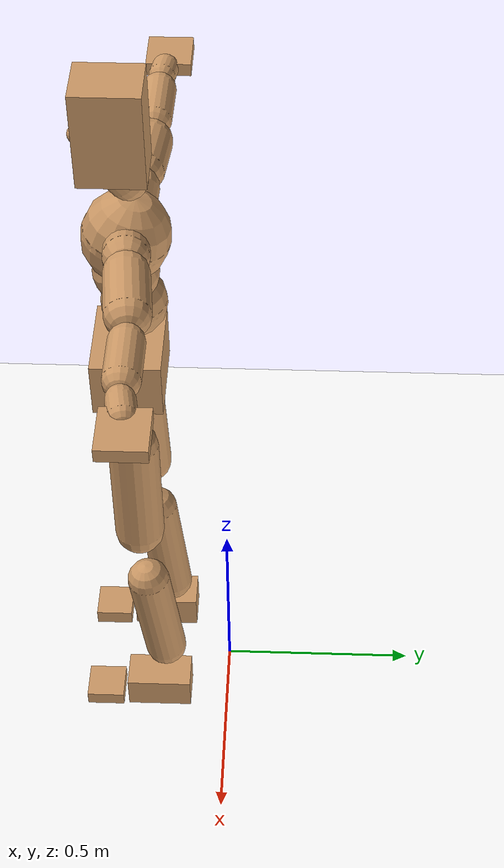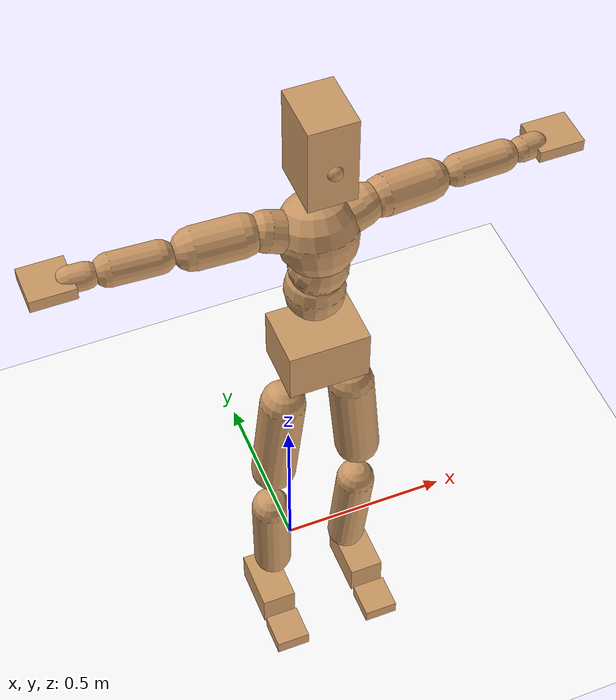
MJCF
<mujoco model="humanoid">
  <option integrator="implicitfast" />

  <visual>
    <global offwidth="1280" offheight="960" />
    <headlight active="1" ambient="0.34 0.34 0.34" diffuse="0.5 0.5 0.5" />
  </visual>

  <default>
    <joint damping="2" stiffness="2" armature="0.01" limited="true" solimplimit="0 .99 .01" />
    <geom condim="1" friction="0.7 0.005 0.0001" solimp=".99 .99 .003" solref="0.015 1" margin="0.001" rgba="0.8 0.6 .4 1" />
    <default class="smplcontact">
      <geom condim="3" friction="1. 0.005 0.0001" solref="0.015 1" solimp="0.98 0.98 0.001" priority="1" />
    </default>
    <default class="stiff_medium">
      <joint stiffness="10" />
    </default>
    <default class="stiff_medium_higher">
      <joint stiffness="50" />
    </default>
    <default class="stiff_high">
      <joint stiffness="100" />
    </default>
  </default>

  <asset>
    <texture type="skybox" builtin="gradient" rgb1="0.99 0.99 0.99" rgb2="0.608 0.828 0.892" width="100" />
    <texture builtin="flat" height="1278" mark="cross" markrgb="1 1 1" name="texgeom" random="0.01" rgb1="0.8 0.6 0.4" rgb2="0.8 0.6 0.4" type="cube" width="127" />
    <texture name="texplane" type="2d" builtin="checker" markrgb="1 1 1" rgb1="0.756 0.772 0.76" rgb2="0.6 0.6 0.6" width="100" height="100" />
    <material name="MatPlane" reflectance="0.5" texture="texplane" texrepeat="1 1" texuniform="true" />
    <material name="geom" texture="texgeom" texuniform="true" />
  </asset>

  <worldbody>
    <light name="tracking_light" pos="0 0 7" dir="0 0 -1" directional="true" cutoff="100" exponent="1" diffuse="1 1 1" specular="0.1 0.1 0.1" mode="trackcom" />
    <camera name="back" pos="0 3 2.4" xyaxes="-1 0 0 0 -1 2" mode="trackcom" />
    <camera name="side" pos="-3 0 2.4" xyaxes="0 -1 0 1 0 2" mode="trackcom" />
    <camera name="front_side" pos="-2.8 -2.8 0.8" xyaxes="0.5 -0.5 0 0.1 0.1 1" mode="trackcom" />
    <geom condim="3" name="floor" pos="0 0 0" rgba="1 1 1 1" size="100 100 .2" type="plane" material="MatPlane" />
    <body name="Pelvis" pos="-0.0018 -0.2233 1.16548" euler="90 0 0">
      <site name="Pelvis" size="0.01" />
      <freejoint name="Pelvis" />
      <geom type="box" pos="-0.0000 -0.0121 -0.0055" size="0.1069 0.0722 0.083" quat="1.0000 0.0000 0.0000 0.0000" density="3165.830099" name="Pelvis" />
      <body name="L_Hip" pos="0.086875 -0.11425 -0.0085">
        <joint name="L_Hip_x" type="hinge" pos="0 0 0" axis="1 0 0" stiffness="14.589841836734694" range="-160.0 22.92" class="stiff_medium" damping="24.10689143795971" armature="0.017703099984976"/>
        <joint name="L_Hip_y" type="hinge" pos="0 0 0" axis="0 1 0" stiffness="14.527612551020406" range="-70.0 70.0" class="stiff_medium" damping="14.262213477061747" armature="0.014001662871370724"/>
        <joint name="L_Hip_z" type="hinge" pos="0 0 0" axis="0 0 1" stiffness="14.532940204081633" range="-28.65 90.0" class="stiff_medium" damping="16.042326803653772" armature="0.01770847782081624"/>
        <geom type="capsule" density="2040.816327" fromto="0.008625 -0.09375 -0.001125 0.03425 -0.37525 -0.0045" size="0.0615" name="L_Hip" />
        <body name="L_Knee" pos="0.042875 -0.469 -0.005625">
          <joint name="L_Knee_x" type="hinge" pos="0 0 0" axis="1 0 0" range="-5.16 171.89" damping="12.42786647328908" armature="0.01695568739341873" stiffness="2.8466087346938775"/>
          <joint name="L_Knee_y" type="hinge" pos="0 0 0" axis="0 1 0" range="-4.58 6.88" damping="11.131948599716754" armature="0.013404538190087148" stiffness="2.888953489795919"/>
          <joint name="L_Knee_z" type="hinge" pos="0 0 0" axis="0 0 1" range="-6.88 4.58" damping="12.396032357314196" armature="0.01698035549968794" stiffness="2.8279299387755104"/>
          <geom type="capsule" density="1234.567901" fromto="-0.003375 -0.0995 -0.010875 -0.013625 -0.398 -0.04375" size="0.0541" name="L_Knee" />
          <body name="L_Ankle" pos="-0.017 -0.4975 -0.054625">
            <joint name="L_Ankle_x" type="hinge" pos="0 0 0" axis="1 0 0" range="-45.84 45.84" class="stiff_medium" damping="7.851672460897992" armature="0.013699724540716432" stiffness="12.5"/>
            <joint name="L_Ankle_y" type="hinge" pos="0 0 0" axis="0 1 0" range="-74.48 22.92" class="stiff_medium" damping="3.9060654718054306" armature="0.013562086640027183" stiffness="12.5"/>
            <joint name="L_Ankle_z" type="hinge" pos="0 0 0" axis="0 0 1" range="-4.58 4.58" class="stiff_medium" damping="7.548153538649302" armature="0.012661027076227552" stiffness="12.5"/>
            <geom type="box" pos="0.029125 -0.029875 0.03025" size="0.0483 0.0464 0.085" quat="1.0000 0.0000 0.0000 0.0000" density="449.071558" name="L_Ankle" class="smplcontact" />
            <body name="L_Toe" pos="0.033 -0.06975 0.149125">
              <joint name="L_Toe_x" type="hinge" pos="0 0 0" axis="1 0 0" range="-91.67 22.92" armature="0.0121385570017811" damping="2.463590570872228" stiffness="2.5"/>
              <joint name="L_Toe_y" type="hinge" pos="0 0 0" axis="0 1 0" range="-4.58 4.58" armature="0.011506786054687992" damping="2.398623152423906" stiffness="2.5"/>
              <joint name="L_Toe_z" type="hinge" pos="0 0 0" axis="0 0 1" range="-4.58 4.58" armature="0.01022937920457889" damping="2.261567952171556" stiffness="2.5"/>
              <geom type="box" pos="-0.00375 0.006875 0.031" size="0.0478 0.02 0.0496" quat="1.0000 0.0000 0.0000 0.0000" density="423.206892" name="L_Toe" class="smplcontact" />
            </body>
          </body>
        </body>
      </body>
      <body name="R_Hip" pos="-0.084625 -0.113125 -0.005375">
        <joint name="R_Hip_x" type="hinge" pos="0 0 0" axis="1 0 0" stiffness="14.589841836734694" range="-160.0 22.92" class="stiff_medium" damping="24.10689143795971" armature="0.017703099984976"/>
        <joint name="R_Hip_y" type="hinge" pos="0 0 0" axis="0 1 0" stiffness="14.527612551020406" range="-70.0 70.0" class="stiff_medium" damping="14.262213477061747" armature="0.014001662871370724"/>
        <joint name="R_Hip_z" type="hinge" pos="0 0 0" axis="0 0 1" stiffness="14.532940204081633" range="-90.0 28.65" class="stiff_medium" damping="16.042326803653772" armature="0.01770847782081624"/>
        <geom type="capsule" density="2040.816327" fromto="-0.009625 -0.095625 -0.00225 -0.03825 -0.382625 -0.008875" size="0.0606" name="R_Hip" />
        <body name="R_Knee" pos="-0.047875 -0.47825 -0.011125">
          <joint name="R_Knee_x" type="hinge" pos="0 0 0" axis="1 0 0" range="-5.16 171.89" damping="12.42786647328908" armature="0.01695568739341873" stiffness="2.8466087346938775"/>
          <joint name="R_Knee_y" type="hinge" pos="0 0 0" axis="0 1 0" range="-6.88 4.58" damping="11.131948599716754" armature="0.013404538190087148" stiffness="2.888953489795919"/>
          <joint name="R_Knee_z" type="hinge" pos="0 0 0" axis="0 0 1" range="-4.58 6.88" damping="12.396032357314196" armature="0.01698035549968794" stiffness="2.8279299387755104"/>
          <geom type="capsule" density="1234.567901" fromto="0.004 -0.099625 -0.010625 0.01575 -0.398375 -0.04225" size="0.0541" name="R_Knee" />
          <body name="R_Ankle" pos="0.01975 -0.498 -0.052875">
            <joint name="R_Ankle_x" type="hinge" pos="0 0 0" axis="1 0 0" range="-45.84 45.84" class="stiff_medium" damping="7.851672460897992" armature="0.013699724540716432" stiffness="12.5"/>
            <joint name="R_Ankle_y" type="hinge" pos="0 0 0" axis="0 1 0" range="-22.92 74.48" class="stiff_medium" damping="3.9060654718054306" armature="0.013562086640027183" stiffness="12.5"/>
            <joint name="R_Ankle_z" type="hinge" pos="0 0 0" axis="0 0 1" range="-4.58 4.58" class="stiff_medium" damping="7.548153538649302" armature="0.012661027076227552" stiffness="12.5"/>
            <geom type="box" pos="-0.0265 -0.02175 0.032" size="0.0483 0.0478 0.0865" quat="1.0000 0.0000 0.0000 0.0000" density="434.700981" name="R_Ankle" class="smplcontact" />
            <body name="R_Toe" pos="-0.03175 -0.060125 0.154125">
              <joint name="R_Toe_x" type="hinge" pos="0 0 0" axis="1 0 0" range="-91.67 22.92" armature="0.0121385570017811" damping="2.463590570872228" stiffness="2.5"/>
              <joint name="R_Toe_y" type="hinge" pos="0 0 0" axis="0 1 0" range="-4.58 4.58" armature="0.011506786054687992" damping="2.398623152423906" stiffness="2.5"/>
              <joint name="R_Toe_z" type="hinge" pos="0 0 0" axis="0 0 1" range="-4.58 4.58" armature="0.01022937920457889" damping="2.261567952171556" stiffness="2.5"/>
              <geom type="box" pos="0.00525 0.005625 0.028375" size="0.0479 0.0216 0.0493" quat="1.0000 0.0000 0.0000 0.0000" density="407.384095" name="R_Toe" class="smplcontact" />
            </body>
          </body>
        </body>
      </body>
      <body name="Torso" pos="-0.0025 0.109 -0.0267">
        <joint name="Torso_x" type="hinge" pos="0 0 0" axis="1 0 0" range="-25.78 57.3" class="stiff_medium" damping="13.810652204593472" armature="0.009092501018959226" stiffness="9.323146326530612"/>
        <joint name="Torso_y" type="hinge" pos="0 0 0" axis="0 1 0" range="-57.3 57.3" class="stiff_high" damping="14.331171543099826" armature="0.005453647751768046" stiffness="94.1491306122449"/>
        <joint name="Torso_z" type="hinge" pos="0 0 0" axis="0 0 1" range="-34.38 34.38" class="stiff_high" damping="17.298336416757877" armature="0.00784644435837221" stiffness="95.34014042553191"/>
        <geom type="capsule" density="2040.816327" fromto="0.0025 0.0608 0.0005 0.003 0.0743 0.0006" size="0.0769" name="Torso" />
        <body name="Spine" pos="0.0055 0.1352 0.0011">
          <joint name="Spine_x" type="hinge" pos="0 0 0" axis="1 0 0" stiffness="9.198122653061224" range="-25.78 57.3" class="stiff_medium" damping="13.625447932409386" armature="0.008970566343267747"/>
          <joint name="Spine_y" type="hinge" pos="0 0 0" axis="0 1 0" stiffness="9.181372040816328" range="-57.3 57.3" class="stiff_high" damping="5.644321396937274" armature="0.005421705337566874"/>
          <joint name="Spine_z" type="hinge" pos="0 0 0" axis="0 0 1" stiffness="18.1392375" range="-34.38 34.38" class="stiff_high" damping="9.559994320421609" armature="0.006997835754189824"/>
          <geom type="capsule" density="2040.816327" fromto="0.0007 0.0238 0.0114 0.0008 0.0291 0.014" size="0.0755" name="Spine" />
          <body name="Chest" pos="0.0015 0.0529 0.0254">
            <joint name="Chest_x" type="hinge" pos="0 0 0" axis="1 0 0" stiffness="8.90027425531915" range="-25.78 57.3" class="stiff_medium" damping="13.356132991200647" armature="0.008907904701027876"/>
            <joint name="Chest_y" type="hinge" pos="0 0 0" axis="0 1 0" stiffness="8.011889047619047" range="-57.3 57.3" class="stiff_high" damping="5.2662250647625015" armature="0.005408588385784326"/>
            <joint name="Chest_z" type="hinge" pos="0 0 0" axis="0 0 1" stiffness="18.1318547826087" range="-34.38 34.38" class="stiff_high" damping="9.302458057933908" armature="0.006628583212401053"/>
            <geom type="capsule" density="2040.816327" fromto="-0.0009 0.0682 -0.0173 -0.001 0.0833 -0.0212" size="0.1002" name="Chest" />
            <body name="Neck" pos="-0.0028 0.2139 -0.0429">
              <joint name="Neck_x" type="hinge" pos="0 0 0" axis="1 0 0" range="-28.65 57.3" class="stiff_medium_higher" damping="9.999999999999996" armature="0.009999999999999993" stiffness="50.0"/>
              <joint name="Neck_y" type="hinge" pos="0 0 0" axis="0 1 0" range="-40.11 40.11" class="stiff_medium_higher" damping="10.0" armature="0.01" stiffness="50.0"/>
              <joint name="Neck_z" type="hinge" pos="0 0 0" axis="0 0 1" range="-40.11 40.11" class="stiff_medium_higher" damping="10.0" armature="0.010000000000000002" stiffness="50.0"/>
              <geom type="capsule" density="1000" fromto="0.001 0.013 0.0103 0.0041 0.052 0.0411" size="0.0436" name="Neck" />
              <body name="Head" pos="0.0052 0.065 0.0513">
                <joint name="Head_x" type="hinge" pos="0 0 0" axis="1 0 0" range="-28.65 57.3" class="stiff_medium_higher" damping="2.0000000000000004" armature="0.010000000000000005" stiffness="50.0"/>
                <joint name="Head_y" type="hinge" pos="0 0 0" axis="0 1 0" range="-40.11 40.11" class="stiff_medium_higher" damping="2.0" armature="0.01" stiffness="50.0"/>
                <joint name="Head_z" type="hinge" pos="0 0 0" axis="0 0 1" range="-40.11 40.11" class="stiff_medium_higher" damping="2.0000000000000053" armature="0.010000000000000054" stiffness="50.0"/>
                <geom type="box" pos="-0.0042 0.0876 -0.0116" size="0.0606 0.1154 0.076" quat="1.0000 0.0000 0.0000 0.0000" density="1018.069894" name="Head" />
                <geom type="capsule" name="nose" size="0.02 0.01" pos="0 0.07 0.05" quat="1 0 0 0" mass="0" contype="0" conaffinity="0" />
              </body>
            </body>
            <body name="L_Thorax" pos="0.06107 0.0943175 -0.0264275">
              <joint name="L_Thorax_x" type="hinge" pos="0 0 0" axis="1 0 0" range="-10.89 4.58" class="stiff_medium_higher" damping="13.43087791250656" armature="0.0067438731053502225" stiffness="33.43562346938776"/>
              <joint name="L_Thorax_y" type="hinge" pos="0 0 0" axis="0 1 0" range="-28.65 17.19" class="stiff_medium_higher" damping="11.84395870975866" armature="0.0052794554835980945" stiffness="33.21350051020408"/>
              <joint name="L_Thorax_z" type="hinge" pos="0 0 0" axis="0 0 1" range="-31.51 40.11" class="stiff_medium_higher" damping="11.842904847336026" armature="0.005278125365951001" stiffness="33.215958673469395"/>
              <geom type="capsule" density="1000" fromto="0.014105 0.0047275 -0.001395 0.05642 0.01891 -0.0055025" size="0.0521" name="L_Thorax" />
              <body name="L_Shoulder" pos="0.070525 0.0236375 -0.0068975">
                <joint name="L_Shoulder_x" type="hinge" pos="0 0 0" axis="1 0 0" range="-97.4 97.4" class="stiff_medium" damping="4.200573869623456" armature="0.007293874713182311" stiffness="6.719801632653062"/>
                <joint name="L_Shoulder_y" type="hinge" pos="0 0 0" axis="0 1 0" range="-108.86 80.21" class="stiff_medium" damping="3.571992469559294" armature="0.0053222464306009526" stiffness="6.659223469387755"/>
                <joint name="L_Shoulder_z" type="hinge" pos="0 0 0" axis="0 0 1" range="-97.4 85.94" class="stiff_medium" damping="3.572341469527375" armature="0.005320431449506389" stiffness="6.662796938775511"/>
                <geom type="capsule" density="1000" fromto="0.0402225 -0.002015 -0.0042625 0.160968 -0.007905 -0.01705" size="0.0517" name="L_Shoulder" />
                <body name="L_Elbow" pos="0.20119 -0.00992 -0.0213125">
                  <joint name="L_Elbow_x" type="hinge" pos="0 0 0" axis="1 0 0" range="-17.19 4.58" damping="3.7512094390015127" armature="0.008221713445805183" stiffness="1.3692106734693876"/>
                  <joint name="L_Elbow_y" type="hinge" pos="0 0 0" axis="0 1 0" range="-180.0 17.19" damping="3.0766314110203528" armature="0.005532912421377135" stiffness="1.368633387755102"/>
                  <joint name="L_Elbow_z" type="hinge" pos="0 0 0" axis="0 0 1" range="-100.84 4.58" damping="3.075083451218572" armature="0.005523383254833459" stiffness="1.3696153673469391"/>
                  <geom type="capsule" density="1000" fromto="0.038595 0.001395 -0.000155 0.154535 0.00558 -0.0006975" size="0.0405" name="L_Elbow" />
                  <body name="L_Wrist" pos="0.19313 0.006975 -0.00093">
                    <joint name="L_Wrist_x" type="hinge" pos="0 0 0" axis="1 0 0" range="-180.0 22.92" armature="0.008602907880090408" damping="1.5994571311849286" stiffness="1.486859530612245"/>
                    <joint name="L_Wrist_y" type="hinge" pos="0 0 0" axis="0 1 0" range="-17.19 17.19" armature="0.006335437662014466" damping="1.3682982903238978" stiffness="1.4775934285714285"/>
                    <joint name="L_Wrist_z" type="hinge" pos="0 0 0" axis="0 0 1" range="-22.92 22.92" armature="0.006206199430184796" damping="1.3559819581986192" stiffness="1.4813309591836734"/>
                    <geom type="capsule" density="1000" fromto="0.01302 -0.00124 -0.002325 0.05208 -0.0050375 -0.0093" size="0.0318" name="L_Wrist" class="smplcontact" />
                    <body name="L_Hand" pos="0.0651 -0.006355 -0.0115475">
                      <joint name="L_Hand_x" type="hinge" pos="0 0 0" axis="1 0 0" range="-17.19 17.19" armature="0.009826007646420762" damping="1.7452972154880773" stiffness="1.55"/>
                      <joint name="L_Hand_y" type="hinge" pos="0 0 0" axis="0 1 0" range="-51.57 51.57" armature="0.007895802531703938" damping="1.564512315332871" stiffness="1.55"/>
                      <joint name="L_Hand_z" type="hinge" pos="0 0 0" axis="0 0 1" range="-91.67 91.67" armature="0.00738127998582637" damping="1.5126786822078822" stiffness="1.55"/>
                      <geom type="box" pos="0.0382075 0.000775 -0.004495" size="0.0585 0.0158 0.0538" quat="1.0000 0.0000 0.0000 0.0000" density="400.552564" name="L_Hand" class="smplcontact" />
                    </body>
                  </body>
                </body>
              </body>
            </body>
            <body name="R_Thorax" pos="-0.063395 0.09207 -0.029915">
              <joint name="R_Thorax_x" type="hinge" pos="0 0 0" axis="1 0 0" range="-10.89 4.58" class="stiff_medium_higher" damping="13.43087791250656" armature="0.0067438731053502225" stiffness="33.43562346938776"/>
              <joint name="R_Thorax_y" type="hinge" pos="0 0 0" axis="0 1 0" range="-17.19 28.65" class="stiff_medium_higher" damping="11.84395870975866" armature="0.0052794554835980945" stiffness="33.21350051020408"/>
              <joint name="R_Thorax_z" type="hinge" pos="0 0 0" axis="0 0 1" range="-40.11 31.51" class="stiff_medium_higher" damping="11.842904847336026" armature="0.005278125365951001" stiffness="33.215958673469395"/>
              <geom type="capsule" density="1000" fromto="-0.01488 0.0050375 -0.001395 -0.05952 0.02015 -0.0056575" size="0.0511" name="R_Thorax" />
              <body name="R_Shoulder" pos="-0.0744 0.025265 -0.0070525">
                <joint name="R_Shoulder_x" type="hinge" pos="0 0 0" axis="1 0 0" range="-97.4 97.4" class="stiff_medium" damping="4.200573869623456" armature="0.007293874713182311" stiffness="6.719801632653062"/>
                <joint name="R_Shoulder_y" type="hinge" pos="0 0 0" axis="0 1 0" range="-80.21 108.86" class="stiff_medium" damping="3.571992469559294" armature="0.0053222464306009526" stiffness="6.659223469387755"/>
                <joint name="R_Shoulder_z" type="hinge" pos="0 0 0" axis="0 0 1" range="-85.94 97.4" class="stiff_medium" damping="3.572341469527375" armature="0.005320431449506389" stiffness="6.662796938775511"/>
                <geom type="capsule" density="1000" fromto="-0.0392925 -0.0020925 -0.0033325 -0.157325 -0.0082925 -0.0132525" size="0.0531" name="R_Shoulder" />
                <body name="R_Elbow" pos="-0.196618 -0.0103075 -0.016585">
                  <joint name="R_Elbow_x" type="hinge" pos="0 0 0" axis="1 0 0" range="-17.19 4.58" damping="3.7512094390015127" armature="0.008221713445805183" stiffness="1.3692106734693876"/>
                  <joint name="R_Elbow_y" type="hinge" pos="0 0 0" axis="0 1 0" range="-17.19 180.0" damping="3.0766314110203528" armature="0.005532912421377135" stiffness="1.368633387755102"/>
                  <joint name="R_Elbow_z" type="hinge" pos="0 0 0" axis="0 0 1" range="-4.58 100.84" damping="3.075083451218572" armature="0.005523383254833459" stiffness="1.3696153673469391"/>
                  <geom type="capsule" density="1000" fromto="-0.0396025 0.00124 -0.0008525 -0.158255 0.004805 -0.00341" size="0.0408" name="R_Elbow" />
                  <body name="R_Wrist" pos="-0.197858 0.006045 -0.00434">
                    <joint name="R_Wrist_x" type="hinge" pos="0 0 0" axis="1 0 0" range="-180.0 22.92" armature="0.008602907880090408" damping="1.5994571311849286" stiffness="1.486859530612245"/>
                    <joint name="R_Wrist_y" type="hinge" pos="0 0 0" axis="0 1 0" range="-17.19 17.19" armature="0.006335437662014466" damping="1.3682982903238978" stiffness="1.4775934285714285"/>
                    <joint name="R_Wrist_z" type="hinge" pos="0 0 0" axis="0 0 1" range="-22.92 22.92" armature="0.006206199430184796" damping="1.3559819581986192" stiffness="1.4813309591836734"/>
                    <geom type="capsule" density="1000" fromto="-0.0130975 -0.00093 -0.0016275 -0.0524675 -0.0037975 -0.0064325" size="0.0326" name="R_Wrist" class="smplcontact" />
                    <body name="R_Hand" pos="-0.065565 -0.0047275 -0.0079825">
                      <joint name="R_Hand_x" type="hinge" pos="0 0 0" axis="1 0 0" range="-17.19 17.19" armature="0.009826007646420762" damping="1.7452972154880773" stiffness="1.55"/>
                      <joint name="R_Hand_y" type="hinge" pos="0 0 0" axis="0 1 0" range="-51.57 51.57" armature="0.007895802531703938" damping="1.564512315332871" stiffness="1.55"/>
                      <joint name="R_Hand_z" type="hinge" pos="0 0 0" axis="0 0 1" range="-91.67 91.67" armature="0.00738127998582637" damping="1.5126786822078822" stiffness="1.55"/>
                      <geom type="box" pos="-0.035805 -0.0006975 -0.0061225" size="0.0569 0.0164 0.0546" quat="1.0000 0.0000 0.0000 0.0000" density="403.679611" name="R_Hand" class="smplcontact" />
                    </body>
                  </body>
                </body>
              </body>
            </body>
          </body>
        </body>
      </body>
    </body>
  </worldbody>
  <actuator>
    <general name="L_Hip_x" joint="L_Hip_x" biastype="affine" gainprm="419.21001901187765" biasprm="-314.15541988928595 -262.6171530612245 -3.2142521917279616" ctrllimited="true" ctrlrange="-1 1" forcerange="-525.234306122449 525.234306122449" />
    <general name="L_Hip_y" joint="L_Hip_y" biastype="affine" gainprm="319.47888605139207" biasprm="0.0 -261.4970259183673 -2.8524426954123494" ctrllimited="true" ctrlrange="-1 1" forcerange="-522.9940518367346 522.9940518367346" />
    <general name="L_Hip_z" joint="L_Hip_z" biastype="affine" gainprm="270.857650054052" biasprm="140.0515535677715 -261.5929236734694 -3.2084653607307545" ctrllimited="true" ctrlrange="-1 1" forcerange="-523.1858473469388 523.1858473469388" />
    <general name="L_Knee_x" joint="L_Knee_x" biastype="affine" gainprm="395.8344512323349" biasprm="372.7618077038531 -256.194786122449 -3.10696661832227" ctrllimited="true" ctrlrange="-1 1" forcerange="-512.389572244898 512.389572244898" />
    <general name="L_Knee_y" joint="L_Knee_y" biastype="affine" gainprm="26.002496647202126" biasprm="5.218651159560636 -260.0058140816327 -2.7829871499291885" ctrllimited="true" ctrlrange="-1 1" forcerange="-520.0116281632654 520.0116281632654" />
    <general name="L_Knee_z" joint="L_Knee_z" biastype="affine" gainprm="25.45324423230062" biasprm="-5.108417254301171 -254.51369448979594 -3.099008089328549" ctrllimited="true" ctrlrange="-1 1" forcerange="-509.0273889795919 509.0273889795919" />
    <general name="L_Ankle_x" joint="L_Ankle_x" biastype="affine" gainprm="90.00662952534759" biasprm="0.0 -112.5 -2.617224153632664" ctrllimited="true" ctrlrange="-1 1" forcerange="-225.0 225.0" />
    <general name="L_Ankle_y" joint="L_Ankle_y" biastype="affine" gainprm="95.62222639363935" biasprm="-50.61891163096555 -112.5 -2.604043647870287" ctrllimited="true" ctrlrange="-1 1" forcerange="-225.0 225.0" />
    <general name="L_Ankle_z" joint="L_Ankle_z" biastype="affine" gainprm="8.992808970900782" biasprm="0.0 -112.5 -2.5160511795497675" ctrllimited="true" ctrlrange="-1 1" forcerange="-225.0 225.0" />
    <general name="L_Toe_x" joint="L_Toe_x" biastype="affine" gainprm="89.99877554371359" biasprm="-53.996123733574564 -90.0 -0.9854362283488913" ctrllimited="true" ctrlrange="-1 1" forcerange="-180.0 180.0" />
    <general name="L_Toe_y" joint="L_Toe_y" biastype="affine" gainprm="7.194247176720626" biasprm="0.0 -90.0 -0.9594492609695625" ctrllimited="true" ctrlrange="-1 1" forcerange="-180.0 180.0" />
    <general name="L_Toe_z" joint="L_Toe_z" biastype="affine" gainprm="7.194247176720626" biasprm="0.0 -90.0 -0.9046271808686225" ctrllimited="true" ctrlrange="-1 1" forcerange="-180.0 180.0" />
    <general name="R_Hip_x" joint="R_Hip_x" biastype="affine" gainprm="419.21001901187765" biasprm="-314.15541988928595 -262.6171530612245 -3.2142521917279616" ctrllimited="true" ctrlrange="-1 1" forcerange="-525.234306122449 525.234306122449" />
    <general name="R_Hip_y" joint="R_Hip_y" biastype="affine" gainprm="319.47888605139207" biasprm="0.0 -261.4970259183673 -2.8524426954123494" ctrllimited="true" ctrlrange="-1 1" forcerange="-522.9940518367346 522.9940518367346" />
    <general name="R_Hip_z" joint="R_Hip_z" biastype="affine" gainprm="270.857650054052" biasprm="-140.0515535677715 -261.5929236734694 -3.2084653607307545" ctrllimited="true" ctrlrange="-1 1" forcerange="-523.1858473469388 523.1858473469388" />
    <general name="R_Knee_x" joint="R_Knee_x" biastype="affine" gainprm="395.8344512323349" biasprm="372.7618077038531 -256.194786122449 -3.10696661832227" ctrllimited="true" ctrlrange="-1 1" forcerange="-512.389572244898 512.389572244898" />
    <general name="R_Knee_y" joint="R_Knee_y" biastype="affine" gainprm="26.002496647202126" biasprm="-5.218651159560636 -260.0058140816327 -2.7829871499291885" ctrllimited="true" ctrlrange="-1 1" forcerange="-520.0116281632654 520.0116281632654" />
    <general name="R_Knee_z" joint="R_Knee_z" biastype="affine" gainprm="25.45324423230062" biasprm="5.108417254301171 -254.51369448979594 -3.099008089328549" ctrllimited="true" ctrlrange="-1 1" forcerange="-509.0273889795919 509.0273889795919" />
    <general name="R_Ankle_x" joint="R_Ankle_x" biastype="affine" gainprm="90.00662952534759" biasprm="0.0 -112.5 -2.617224153632664" ctrllimited="true" ctrlrange="-1 1" forcerange="-225.0 225.0" />
    <general name="R_Ankle_y" joint="R_Ankle_y" biastype="affine" gainprm="95.62222639363935" biasprm="50.61891163096555 -112.5 -2.604043647870287" ctrllimited="true" ctrlrange="-1 1" forcerange="-225.0 225.0" />
    <general name="R_Ankle_z" joint="R_Ankle_z" biastype="affine" gainprm="8.992808970900782" biasprm="0.0 -112.5 -2.5160511795497675" ctrllimited="true" ctrlrange="-1 1" forcerange="-225.0 225.0" />
    <general name="R_Toe_x" joint="R_Toe_x" biastype="affine" gainprm="89.99877554371359" biasprm="-53.996123733574564 -90.0 -0.9854362283488913" ctrllimited="true" ctrlrange="-1 1" forcerange="-180.0 180.0" />
    <general name="R_Toe_y" joint="R_Toe_y" biastype="affine" gainprm="7.194247176720626" biasprm="0.0 -90.0 -0.9594492609695625" ctrllimited="true" ctrlrange="-1 1" forcerange="-180.0 180.0" />
    <general name="R_Toe_z" joint="R_Toe_z" biastype="affine" gainprm="7.194247176720626" biasprm="0.0 -90.0 -0.9046271808686225" ctrllimited="true" ctrlrange="-1 1" forcerange="-180.0 180.0" />
    <general name="Torso_x" joint="Torso_x" biastype="affine" gainprm="162.2249324590423" biasprm="61.54706152032995 -223.7555118367347 -3.6828405878915924" ctrllimited="true" ctrlrange="-1 1" forcerange="-335.63326775510205 335.63326775510205" />
    <general name="Torso_y" joint="Torso_y" biastype="affine" gainprm="225.974557843997" biasprm="0.0 -225.95791346938776 -2.866234308619965" ctrllimited="true" ctrlrange="-1 1" forcerange="-338.93687020408163 338.93687020408163" />
    <general name="Torso_z" joint="Torso_z" biastype="affine" gainprm="137.29991517080745" biasprm="0.0 -228.8163370212766 -3.459667283351575" ctrllimited="true" ctrlrange="-1 1" forcerange="-343.2245055319149 343.2245055319149" />
    <general name="Spine_x" joint="Spine_x" biastype="affine" gainprm="160.04949122128795" biasprm="60.721713568789056 -220.7549436734694 -3.633452781975836" ctrllimited="true" ctrlrange="-1 1" forcerange="-331.1324155102041 331.1324155102041" />
    <general name="Spine_y" joint="Spine_y" biastype="affine" gainprm="220.36916048323718" biasprm="0.0 -220.35292897959184 -2.822160698468637" ctrllimited="true" ctrlrange="-1 1" forcerange="-330.52939346938774 330.52939346938774" />
    <general name="Spine_z" joint="Spine_z" biastype="affine" gainprm="130.61213036278338" biasprm="0.0 -217.67085 -3.1866647734738693" ctrllimited="true" ctrlrange="-1 1" forcerange="-326.506275 326.506275" />
    <general name="Chest_x" joint="Chest_x" biastype="affine" gainprm="154.86685925194476" biasprm="58.7554574340551 -213.6065821276596 -3.561635464320173" ctrllimited="true" ctrlrange="-1 1" forcerange="-320.4098731914894 320.4098731914894" />
    <general name="Chest_y" joint="Chest_y" biastype="affine" gainprm="192.29950114859662" biasprm="0.0 -192.28533714285712 -2.6331125323812508" ctrllimited="true" ctrlrange="-1 1" forcerange="-288.4280057142857 288.4280057142857" />
    <general name="Chest_z" joint="Chest_z" biastype="affine" gainprm="130.55897088205305" biasprm="0.0 -217.58225739130438 -3.100819352644636" ctrllimited="true" ctrlrange="-1 1" forcerange="-326.37338608695654 326.37338608695654" />
    <general name="Neck_x" joint="Neck_x" biastype="affine" gainprm="27.00198885760427" biasprm="9.000662952534757 -36.0 -0.7999999999999997" ctrllimited="true" ctrlrange="-1 1" forcerange="-72.0 72.0" />
    <general name="Neck_y" joint="Neck_y" biastype="affine" gainprm="25.20185626709732" biasprm="0.0 -36.0 -0.8" ctrllimited="true" ctrlrange="-1 1" forcerange="-72.0 72.0" />
    <general name="Neck_z" joint="Neck_z" biastype="affine" gainprm="25.20185626709732" biasprm="0.0 -36.0 -0.8" ctrllimited="true" ctrlrange="-1 1" forcerange="-72.0 72.0" />
    <general name="Head_x" joint="Head_x" biastype="affine" gainprm="18.001325905069514" biasprm="6.000441968356505 -24.0 -0.8000000000000003" ctrllimited="true" ctrlrange="-1 1" forcerange="-48.0 48.0" />
    <general name="Head_y" joint="Head_y" biastype="affine" gainprm="16.801237511398213" biasprm="0.0 -24.0 -0.8" ctrllimited="true" ctrlrange="-1 1" forcerange="-48.0 48.0" />
    <general name="Head_z" joint="Head_z" biastype="affine" gainprm="16.801237511398213" biasprm="0.0 -24.0 -0.8000000000000022" ctrllimited="true" ctrlrange="-1 1" forcerange="-48.0 48.0" />
    <general name="L_Thorax_x" joint="L_Thorax_x" biastype="affine" gainprm="10.833239714349121" biasprm="-4.4187293211081435 -80.24549632653061 -1.074470233000525" ctrllimited="true" ctrlrange="-1 1" forcerange="-160.49099265306123 160.49099265306123" />
    <general name="L_Thorax_y" joint="L_Thorax_y" biastype="affine" gainprm="31.887309180393395" biasprm="-7.971827295098349 -79.71240122448978 -0.9475166967806928" ctrllimited="true" ctrlrange="-1 1" forcerange="-159.42480244897956 159.42480244897956" />
    <general name="L_Thorax_z" joint="L_Thorax_z" biastype="affine" gainprm="49.8241297438119" biasprm="5.98279134036278 -79.71830081632655 -0.9474323877868822" ctrllimited="true" ctrlrange="-1 1" forcerange="-159.4366016326531 159.4366016326531" />
    <general name="L_Shoulder_x" joint="L_Shoulder_x" biastype="affine" gainprm="54.831990872567324" biasprm="0.0 -32.2550478367347 -1.1201530318995883" ctrllimited="true" ctrlrange="-1 1" forcerange="-64.5100956734694 64.5100956734694" />
    <general name="L_Shoulder_y" joint="L_Shoulder_y" biastype="affine" gainprm="52.739356038732126" biasprm="-7.9916567964757785 -31.964272653061222 -0.9525313252158117" ctrllimited="true" ctrlrange="-1 1" forcerange="-63.928545306122444 63.928545306122444" />
    <general name="L_Shoulder_z" joint="L_Shoulder_z" biastype="affine" gainprm="51.16846795221352" biasprm="-3.1983781102452724 -31.98142530612245 -0.9526243918739667" ctrllimited="true" ctrlrange="-1 1" forcerange="-63.9628506122449 63.9628506122449" />
    <general name="L_Elbow_x" joint="L_Elbow_x" biastype="affine" gainprm="9.364370274135227" biasprm="-5.424194265358073 -49.291584244897955 -0.600193510240242" ctrllimited="true" ctrlrange="-1 1" forcerange="-98.58316848979591 98.58316848979591" />
    <general name="L_Elbow_y" joint="L_Elbow_y" biastype="affine" gainprm="84.78555943298619" biasprm="-70.00323003846282 -49.27080195918367 -0.4922610257632565" ctrllimited="true" ctrlrange="-1 1" forcerange="-98.54160391836734 98.54160391836734" />
    <general name="L_Elbow_z" joint="L_Elbow_z" biastype="affine" gainprm="45.359839041363344" biasprm="-41.41849844547179 -49.306153224489805 -0.49201335219497155" ctrllimited="true" ctrlrange="-1 1" forcerange="-98.61230644897961 98.61230644897961" />
    <general name="L_Wrist_x" joint="L_Wrist_x" biastype="affine" gainprm="15.797683800581504" biasprm="-12.228958069166877 -8.92115718367347 -0.6397828524739715" ctrllimited="true" ctrlrange="-1 1" forcerange="-17.84231436734694 17.84231436734694" />
    <general name="L_Wrist_y" joint="L_Wrist_y" biastype="affine" gainprm="2.659864086290334" biasprm="0.0 -8.86556057142857 -0.5473193161295592" ctrllimited="true" ctrlrange="-1 1" forcerange="-17.73112114285714 17.73112114285714" />
    <general name="L_Wrist_z" joint="L_Wrist_z" biastype="affine" gainprm="3.5554561826046047" biasprm="0.0 -8.88798575510204 -0.5423927832794477" ctrllimited="true" ctrlrange="-1 1" forcerange="-17.77597151020408 17.77597151020408" />
    <general name="L_Hand_x" joint="L_Hand_x" biastype="affine" gainprm="2.7902055152857757" biasprm="0.0 -9.3 -0.698118886195231" ctrllimited="true" ctrlrange="-1 1" forcerange="-18.6 18.6" />
    <general name="L_Hand_y" joint="L_Hand_y" biastype="affine" gainprm="8.370616545857324" biasprm="0.0 -9.3 -0.6258049261331484" ctrllimited="true" ctrlrange="-1 1" forcerange="-18.6 18.6" />
    <general name="L_Hand_z" joint="L_Hand_z" biastype="affine" gainprm="14.879472925319778" biasprm="0.0 -9.3 -0.6050714728831529" ctrllimited="true" ctrlrange="-1 1" forcerange="-18.6 18.6" />
    <general name="R_Thorax_x" joint="R_Thorax_x" biastype="affine" gainprm="10.833239714349121" biasprm="-4.4187293211081435 -80.24549632653061 -1.074470233000525" ctrllimited="true" ctrlrange="-1 1" forcerange="-160.49099265306123 160.49099265306123" />
    <general name="R_Thorax_y" joint="R_Thorax_y" biastype="affine" gainprm="31.887309180393395" biasprm="7.971827295098343 -79.71240122448978 -0.9475166967806928" ctrllimited="true" ctrlrange="-1 1" forcerange="-159.42480244897956 159.42480244897956" />
    <general name="R_Thorax_z" joint="R_Thorax_z" biastype="affine" gainprm="49.8241297438119" biasprm="-5.98279134036278 -79.71830081632655 -0.9474323877868822" ctrllimited="true" ctrlrange="-1 1" forcerange="-159.4366016326531 159.4366016326531" />
    <general name="R_Shoulder_x" joint="R_Shoulder_x" biastype="affine" gainprm="54.831990872567324" biasprm="0.0 -32.2550478367347 -1.1201530318995883" ctrllimited="true" ctrlrange="-1 1" forcerange="-64.5100956734694 64.5100956734694" />
    <general name="R_Shoulder_y" joint="R_Shoulder_y" biastype="affine" gainprm="52.739356038732126" biasprm="7.9916567964757785 -31.964272653061222 -0.9525313252158117" ctrllimited="true" ctrlrange="-1 1" forcerange="-63.928545306122444 63.928545306122444" />
    <general name="R_Shoulder_z" joint="R_Shoulder_z" biastype="affine" gainprm="51.16846795221352" biasprm="3.1983781102452653 -31.98142530612245 -0.9526243918739667" ctrllimited="true" ctrlrange="-1 1" forcerange="-63.9628506122449 63.9628506122449" />
    <general name="R_Elbow_x" joint="R_Elbow_x" biastype="affine" gainprm="9.364370274135227" biasprm="-5.424194265358073 -49.291584244897955 -0.600193510240242" ctrllimited="true" ctrlrange="-1 1" forcerange="-98.58316848979591 98.58316848979591" />
    <general name="R_Elbow_y" joint="R_Elbow_y" biastype="affine" gainprm="84.78555943298619" biasprm="70.00323003846282 -49.27080195918367 -0.4922610257632565" ctrllimited="true" ctrlrange="-1 1" forcerange="-98.54160391836734 98.54160391836734" />
    <general name="R_Elbow_z" joint="R_Elbow_z" biastype="affine" gainprm="45.359839041363344" biasprm="41.41849844547178 -49.306153224489805 -0.49201335219497155" ctrllimited="true" ctrlrange="-1 1" forcerange="-98.61230644897961 98.61230644897961" />
    <general name="R_Wrist_x" joint="R_Wrist_x" biastype="affine" gainprm="15.797683800581504" biasprm="-12.228958069166877 -8.92115718367347 -0.6397828524739715" ctrllimited="true" ctrlrange="-1 1" forcerange="-17.84231436734694 17.84231436734694" />
    <general name="R_Wrist_y" joint="R_Wrist_y" biastype="affine" gainprm="2.659864086290334" biasprm="0.0 -8.86556057142857 -0.5473193161295592" ctrllimited="true" ctrlrange="-1 1" forcerange="-17.73112114285714 17.73112114285714" />
    <general name="R_Wrist_z" joint="R_Wrist_z" biastype="affine" gainprm="3.5554561826046047" biasprm="0.0 -8.88798575510204 -0.5423927832794477" ctrllimited="true" ctrlrange="-1 1" forcerange="-17.77597151020408 17.77597151020408" />
    <general name="R_Hand_x" joint="R_Hand_x" biastype="affine" gainprm="2.7902055152857757" biasprm="0.0 -9.3 -0.698118886195231" ctrllimited="true" ctrlrange="-1 1" forcerange="-18.6 18.6" />
    <general name="R_Hand_y" joint="R_Hand_y" biastype="affine" gainprm="8.370616545857324" biasprm="0.0 -9.3 -0.6258049261331484" ctrllimited="true" ctrlrange="-1 1" forcerange="-18.6 18.6" />
    <general name="R_Hand_z" joint="R_Hand_z" biastype="affine" gainprm="14.879472925319778" biasprm="0.0 -9.3 -0.6050714728831529" ctrllimited="true" ctrlrange="-1 1" forcerange="-18.6 18.6" />
  </actuator>
  <contact>
    <exclude body1="Torso" body2="Chest" />
    <exclude body1="Head" body2="Chest" />
    <exclude body1="R_Knee" body2="R_Toe" />
    <exclude body1="R_Knee" body2="L_Ankle" />
    <exclude body1="R_Knee" body2="L_Toe" />
    <exclude body1="L_Knee" body2="L_Toe" />
    <exclude body1="L_Knee" body2="R_Ankle" />
    <exclude body1="L_Knee" body2="R_Toe" />
    <exclude body1="L_Shoulder" body2="Chest" />
    <exclude body1="R_Shoulder" body2="Chest" />
  </contact>
  <sensor>
    <framelinvel name="sensor_Pelvis_framelinvel" objtype="xbody" objname="Pelvis" />
    <framelinvel name="sensor_L_Hip_framelinvel" objtype="xbody" objname="L_Hip" />
    <framelinvel name="sensor_L_Knee_framelinvel" objtype="xbody" objname="L_Knee" />
    <framelinvel name="sensor_L_Ankle_framelinvel" objtype="xbody" objname="L_Ankle" />
    <framelinvel name="sensor_L_Toe_framelinvel" objtype="xbody" objname="L_Toe" />
    <framelinvel name="sensor_R_Hip_framelinvel" objtype="xbody" objname="R_Hip" />
    <framelinvel name="sensor_R_Knee_framelinvel" objtype="xbody" objname="R_Knee" />
    <framelinvel name="sensor_R_Ankle_framelinvel" objtype="xbody" objname="R_Ankle" />
    <framelinvel name="sensor_R_Toe_framelinvel" objtype="xbody" objname="R_Toe" />
    <framelinvel name="sensor_Torso_framelinvel" objtype="xbody" objname="Torso" />
    <framelinvel name="sensor_Spine_framelinvel" objtype="xbody" objname="Spine" />
    <framelinvel name="sensor_Chest_framelinvel" objtype="xbody" objname="Chest" />
    <framelinvel name="sensor_Neck_framelinvel" objtype="xbody" objname="Neck" />
    <framelinvel name="sensor_Head_framelinvel" objtype="xbody" objname="Head" />
    <framelinvel name="sensor_L_Thorax_framelinvel" objtype="xbody" objname="L_Thorax" />
    <framelinvel name="sensor_L_Shoulder_framelinvel" objtype="xbody" objname="L_Shoulder" />
    <framelinvel name="sensor_L_Elbow_framelinvel" objtype="xbody" objname="L_Elbow" />
    <framelinvel name="sensor_L_Wrist_framelinvel" objtype="xbody" objname="L_Wrist" />
    <framelinvel name="sensor_L_Hand_framelinvel" objtype="xbody" objname="L_Hand" />
    <framelinvel name="sensor_R_Thorax_framelinvel" objtype="xbody" objname="R_Thorax" />
    <framelinvel name="sensor_R_Shoulder_framelinvel" objtype="xbody" objname="R_Shoulder" />
    <framelinvel name="sensor_R_Elbow_framelinvel" objtype="xbody" objname="R_Elbow" />
    <framelinvel name="sensor_R_Wrist_framelinvel" objtype="xbody" objname="R_Wrist" />
    <framelinvel name="sensor_R_Hand_framelinvel" objtype="xbody" objname="R_Hand" />
    <frameangvel name="sensor_Pelvis_frameangvel" objtype="xbody" objname="Pelvis" />
    <frameangvel name="sensor_L_Hip_frameangvel" objtype="xbody" objname="L_Hip" />
    <frameangvel name="sensor_L_Knee_frameangvel" objtype="xbody" objname="L_Knee" />
    <frameangvel name="sensor_L_Ankle_frameangvel" objtype="xbody" objname="L_Ankle" />
    <frameangvel name="sensor_L_Toe_frameangvel" objtype="xbody" objname="L_Toe" />
    <frameangvel name="sensor_R_Hip_frameangvel" objtype="xbody" objname="R_Hip" />
    <frameangvel name="sensor_R_Knee_frameangvel" objtype="xbody" objname="R_Knee" />
    <frameangvel name="sensor_R_Ankle_frameangvel" objtype="xbody" objname="R_Ankle" />
    <frameangvel name="sensor_R_Toe_frameangvel" objtype="xbody" objname="R_Toe" />
    <frameangvel name="sensor_Torso_frameangvel" objtype="xbody" objname="Torso" />
    <frameangvel name="sensor_Spine_frameangvel" objtype="xbody" objname="Spine" />
    <frameangvel name="sensor_Chest_frameangvel" objtype="xbody" objname="Chest" />
    <frameangvel name="sensor_Neck_frameangvel" objtype="xbody" objname="Neck" />
    <frameangvel name="sensor_Head_frameangvel" objtype="xbody" objname="Head" />
    <frameangvel name="sensor_L_Thorax_frameangvel" objtype="xbody" objname="L_Thorax" />
    <frameangvel name="sensor_L_Shoulder_frameangvel" objtype="xbody" objname="L_Shoulder" />
    <frameangvel name="sensor_L_Elbow_frameangvel" objtype="xbody" objname="L_Elbow" />
    <frameangvel name="sensor_L_Wrist_frameangvel" objtype="xbody" objname="L_Wrist" />
    <frameangvel name="sensor_L_Hand_frameangvel" objtype="xbody" objname="L_Hand" />
    <frameangvel name="sensor_R_Thorax_frameangvel" objtype="xbody" objname="R_Thorax" />
    <frameangvel name="sensor_R_Shoulder_frameangvel" objtype="xbody" objname="R_Shoulder" />
    <frameangvel name="sensor_R_Elbow_frameangvel" objtype="xbody" objname="R_Elbow" />
    <frameangvel name="sensor_R_Wrist_frameangvel" objtype="xbody" objname="R_Wrist" />
    <frameangvel name="sensor_R_Hand_frameangvel" objtype="xbody" objname="R_Hand" />
    <subtreelinvel name="Chest_subtreelinvel" body="Chest" />
    <gyro name="Pelvis_gyro" site="Pelvis" />
  </sensor>
</mujoco>
